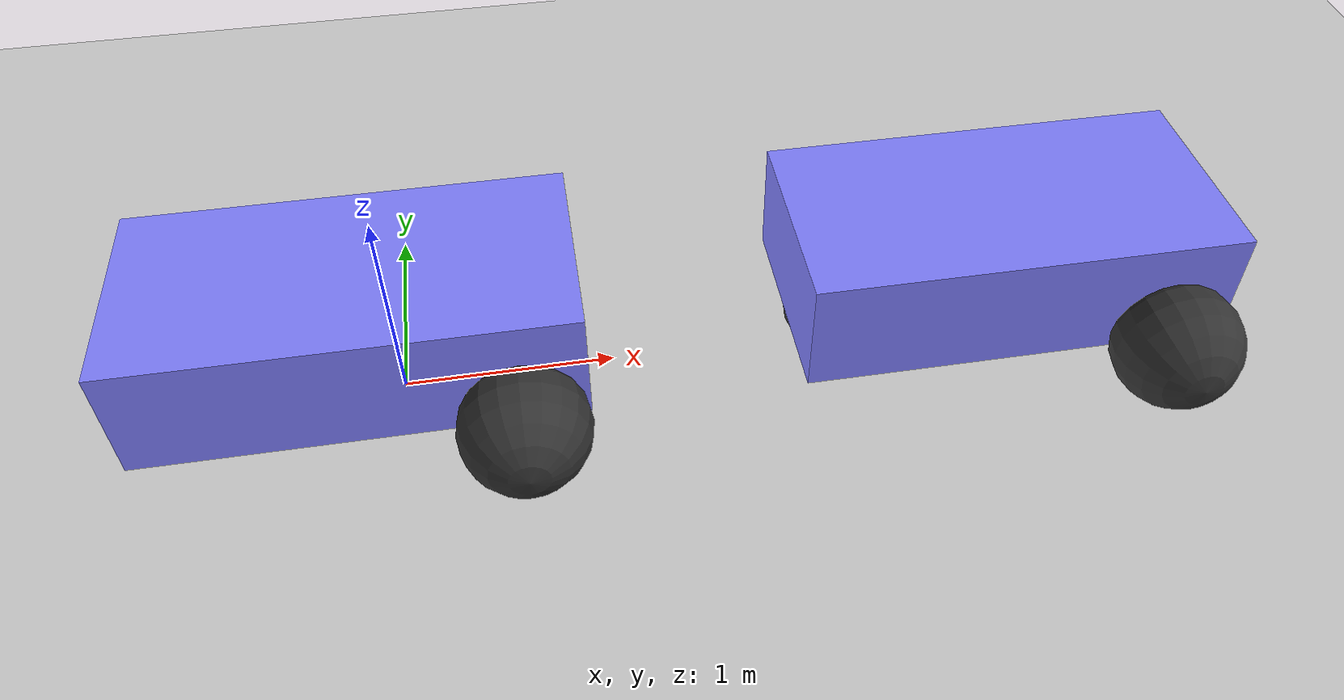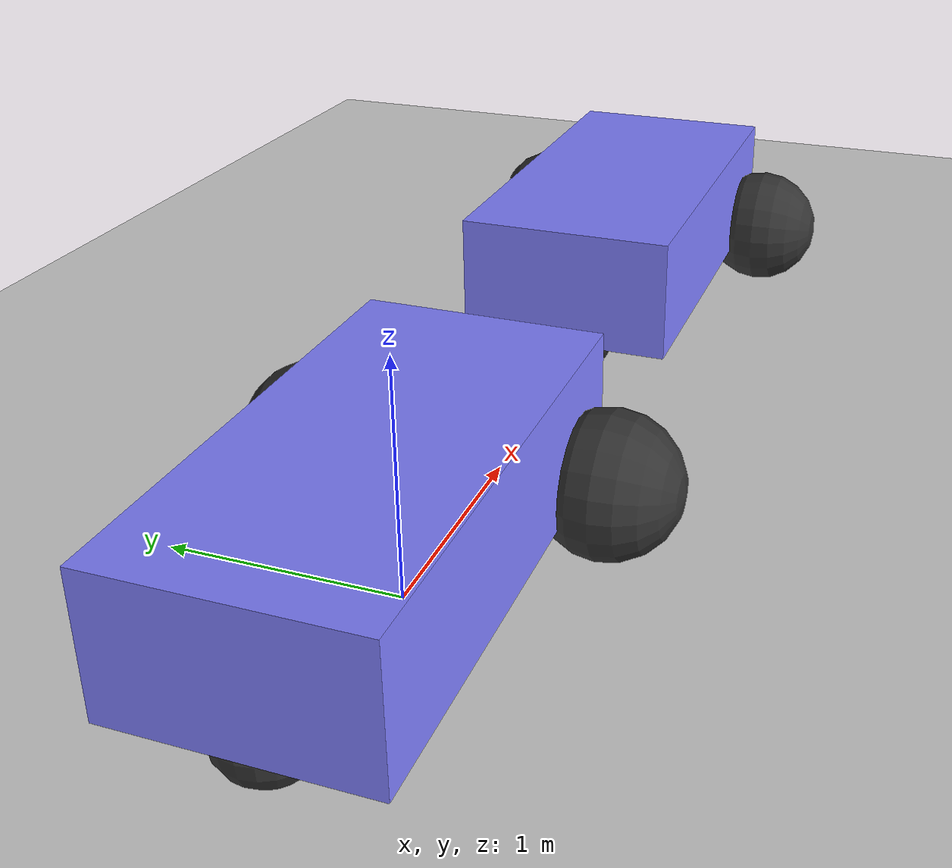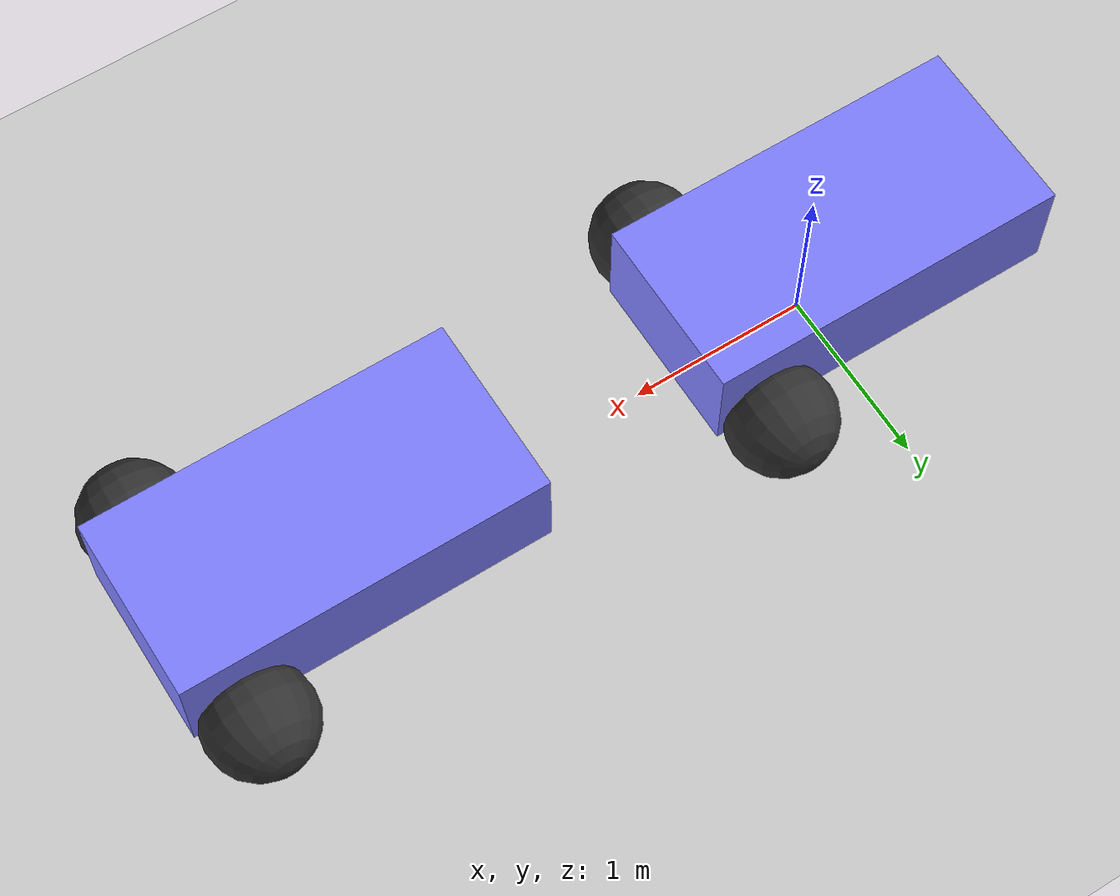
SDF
<?xml version="1.0" ?>
<sdf version="1.6">
  <world name="diff_drive">

    <physics name="1ms" type="ignored">
      <max_step_size>0.001</max_step_size>
      <real_time_factor>0</real_time_factor>
    </physics>
    <plugin
      filename="gz-sim-physics-system"
      name="gz::sim::systems::Physics">
    </plugin>

    <light type="directional" name="sun">
      <cast_shadows>true</cast_shadows>
      <pose>0 0 10 0 0 0</pose>
      <diffuse>1 1 1 1</diffuse>
      <specular>0.5 0.5 0.5 1</specular>
      <attenuation>
        <range>1000</range>
        <constant>0.9</constant>
        <linear>0.01</linear>
        <quadratic>0.001</quadratic>
      </attenuation>
      <direction>-0.5 0.1 -0.9</direction>
    </light>

    <model name="ground_plane">
      <static>true</static>
      <link name="link">
        <collision name="collision">
          <geometry>
            <plane>
              <normal>0 0 1</normal>
              <size>100 100</size>
            </plane>
          </geometry>
        </collision>
        <visual name="visual">
          <geometry>
            <plane>
              <normal>0 0 1</normal>
              <size>100 100</size>
            </plane>
          </geometry>
          <material>
            <ambient>0.8 0.8 0.8 1</ambient>
            <diffuse>0.8 0.8 0.8 1</diffuse>
            <specular>0.8 0.8 0.8 1</specular>
          </material>
        </visual>
      </link>
    </model>

    <model name='vehicle_1'>
      <pose>0 0 0.325 0 -0 0</pose>

      <link name='chassis'>
        <pose>-0.151427 -0 0.175 0 -0 0</pose>
        <inertial>
          <mass>1.14395</mass>
          <inertia>
            <ixx>0.126164</ixx>
            <ixy>0</ixy>
            <ixz>0</ixz>
            <iyy>0.416519</iyy>
            <iyz>0</iyz>
            <izz>0.481014</izz>
          </inertia>
        </inertial>
        <visual name='visual'>
          <geometry>
            <box>
              <size>2.01142 1 0.568726</size>
            </box>
          </geometry>
          <material>
            <ambient>0.5 0.5 1.0 1</ambient>
            <diffuse>0.5 0.5 1.0 1</diffuse>
            <specular>0.0 0.0 1.0 1</specular>
          </material>
        </visual>
        <collision name='collision'>
          <geometry>
            <box>
              <size>2.01142 1 0.568726</size>
            </box>
          </geometry>
        </collision>
      </link>

      <link name='left_wheel'>
        <pose>0.554283 0.625029 -0.025 -1.5707 0 0</pose>
        <inertial>
          <mass>2</mass>
          <inertia>
            <ixx>0.145833</ixx>
            <ixy>0</ixy>
            <ixz>0</ixz>
            <iyy>0.145833</iyy>
            <iyz>0</iyz>
            <izz>0.125</izz>
          </inertia>
        </inertial>
        <visual name='visual'>
          <geometry>
            <sphere>
              <radius>0.3</radius>
            </sphere>
          </geometry>
          <material>
            <ambient>0.2 0.2 0.2 1</ambient>
            <diffuse>0.2 0.2 0.2 1</diffuse>
            <specular>0.2 0.2 0.2 1</specular>
          </material>
        </visual>
        <collision name='collision'>
          <geometry>
            <sphere>
              <radius>0.3</radius>
            </sphere>
          </geometry>
        </collision>
      </link>

      <link name='right_wheel'>
        <pose>0.554282 -0.625029 -0.025 -1.5707 0 0</pose>
        <inertial>
          <mass>2</mass>
          <inertia>
            <ixx>0.145833</ixx>
            <ixy>0</ixy>
            <ixz>0</ixz>
            <iyy>0.145833</iyy>
            <iyz>0</iyz>
            <izz>0.125</izz>
          </inertia>
        </inertial>
        <visual name='visual'>
          <geometry>
            <sphere>
              <radius>0.3</radius>
            </sphere>
          </geometry>
          <material>
            <ambient>0.2 0.2 0.2 1</ambient>
            <diffuse>0.2 0.2 0.2 1</diffuse>
            <specular>0.2 0.2 0.2 1</specular>
          </material>
        </visual>
        <collision name='collision'>
          <geometry>
            <sphere>
              <radius>0.3</radius>
            </sphere>
          </geometry>
        </collision>
      </link>

      <link name='caster'>
        <pose>-0.957138 -0 -0.125 0 -0 0</pose>
        <inertial>
          <mass>1</mass>
          <inertia>
            <ixx>0.1</ixx>
            <ixy>0</ixy>
            <ixz>0</ixz>
            <iyy>0.1</iyy>
            <iyz>0</iyz>
            <izz>0.1</izz>
          </inertia>
        </inertial>
        <visual name='visual'>
          <geometry>
            <sphere>
              <radius>0.2</radius>
            </sphere>
          </geometry>
          <material>
            <ambient>0.2 0.2 0.2 1</ambient>
            <diffuse>0.2 0.2 0.2 1</diffuse>
            <specular>0.2 0.2 0.2 1</specular>
          </material>
        </visual>
        <collision name='collision'>
          <geometry>
            <sphere>
              <radius>0.2</radius>
            </sphere>
          </geometry>
        </collision>
      </link>

      <joint name='left_wheel_joint' type='revolute'>
        <parent>chassis</parent>
        <child>left_wheel</child>
        <axis>
          <xyz>0 0 1</xyz>
          <limit>
            <lower>-1.79769e+308</lower>
            <upper>1.79769e+308</upper>
          </limit>
        </axis>
      </joint>

      <joint name='right_wheel_joint' type='revolute'>
        <parent>chassis</parent>
        <child>right_wheel</child>
        <axis>
          <xyz>0 0 1</xyz>
          <limit>
            <lower>-1.79769e+308</lower>
            <upper>1.79769e+308</upper>
          </limit>
        </axis>
      </joint>

      <joint name='caster_wheel' type='ball'>
        <parent>chassis</parent>
        <child>caster</child>
      </joint>

      <plugin
        filename="gz-sim-diff-drive-system"
        name="gz::sim::systems::DiffDrive">
        <left_joint>left_wheel_joint</left_joint>
        <right_joint>right_wheel_joint</right_joint>
        <wheel_separation>1.25</wheel_separation>
        <wheel_radius>0.3</wheel_radius>
        <max_linear_acceleration>1</max_linear_acceleration>
        <min_linear_acceleration>-1</min_linear_acceleration>
        <max_angular_acceleration>2</max_angular_acceleration>
        <min_angular_acceleration>-2</min_angular_acceleration>
        <max_linear_velocity>0.5</max_linear_velocity>
        <min_linear_velocity>-0.5</min_linear_velocity>
        <max_angular_velocity>1</max_angular_velocity>
        <min_angular_velocity>-1</min_angular_velocity>
        <!-- no odom_publisher_frequency defaults to 50 Hz -->
      </plugin>

      <plugin
        filename="gz-sim-joint-state-publisher-system"
        name="gz::sim::systems::JointStatePublisher">
      </plugin>

    </model>

    <model name='vehicle_2'>
      <pose>3.0 0.0 0.325 0 -0 0</pose>

      <link name='chassis'>
        <pose>-0.151427 -0 0.175 0 -0 0</pose>
        <inertial>
          <mass>1.14395</mass>
          <inertia>
            <ixx>0.126164</ixx>
            <ixy>0</ixy>
            <ixz>0</ixz>
            <iyy>0.416519</iyy>
            <iyz>0</iyz>
            <izz>0.481014</izz>
          </inertia>
        </inertial>
        <visual name='visual'>
          <geometry>
            <box>
              <size>2.01142 1 0.568726</size>
            </box>
          </geometry>
          <material>
            <ambient>0.5 0.5 1.0 1</ambient>
            <diffuse>0.5 0.5 1.0 1</diffuse>
            <specular>0.0 0.0 1.0 1</specular>
          </material>
        </visual>
        <collision name='collision'>
          <geometry>
            <box>
              <size>2.01142 1 0.568726</size>
            </box>
          </geometry>
        </collision>
      </link>

      <link name='left_wheel'>
        <pose>0.554283 0.625029 -0.025 -1.5707 0 0</pose>
        <inertial>
          <mass>2</mass>
          <inertia>
            <ixx>0.145833</ixx>
            <ixy>0</ixy>
            <ixz>0</ixz>
            <iyy>0.145833</iyy>
            <iyz>0</iyz>
            <izz>0.125</izz>
          </inertia>
        </inertial>
        <visual name='visual'>
          <geometry>
            <sphere>
              <radius>0.3</radius>
            </sphere>
          </geometry>
          <material>
            <ambient>0.2 0.2 0.2 1</ambient>
            <diffuse>0.2 0.2 0.2 1</diffuse>
            <specular>0.2 0.2 0.2 1</specular>
          </material>
        </visual>
        <collision name='collision'>
          <geometry>
            <sphere>
              <radius>0.3</radius>
            </sphere>
          </geometry>
        </collision>
      </link>

      <link name='right_wheel'>
        <pose>0.554282 -0.625029 -0.025 -1.5707 0 0</pose>
        <inertial>
          <mass>2</mass>
          <inertia>
            <ixx>0.145833</ixx>
            <ixy>0</ixy>
            <ixz>0</ixz>
            <iyy>0.145833</iyy>
            <iyz>0</iyz>
            <izz>0.125</izz>
          </inertia>
        </inertial>
        <visual name='visual'>
          <geometry>
            <sphere>
              <radius>0.3</radius>
            </sphere>
          </geometry>
          <material>
            <ambient>0.2 0.2 0.2 1</ambient>
            <diffuse>0.2 0.2 0.2 1</diffuse>
            <specular>0.2 0.2 0.2 1</specular>
          </material>
        </visual>
        <collision name='collision'>
          <geometry>
            <sphere>
              <radius>0.3</radius>
            </sphere>
          </geometry>
        </collision>
      </link>

      <link name='caster'>
        <pose>-0.957138 -0 -0.125 0 -0 0</pose>
        <inertial>
          <mass>1</mass>
          <inertia>
            <ixx>0.1</ixx>
            <ixy>0</ixy>
            <ixz>0</ixz>
            <iyy>0.1</iyy>
            <iyz>0</iyz>
            <izz>0.1</izz>
          </inertia>
        </inertial>
        <visual name='visual'>
          <geometry>
            <sphere>
              <radius>0.2</radius>
            </sphere>
          </geometry>
          <material>
            <ambient>0.2 0.2 0.2 1</ambient>
            <diffuse>0.2 0.2 0.2 1</diffuse>
            <specular>0.2 0.2 0.2 1</specular>
          </material>
        </visual>
        <collision name='collision'>
          <geometry>
            <sphere>
              <radius>0.2</radius>
            </sphere>
          </geometry>
        </collision>
      </link>

      <joint name='left_wheel_joint' type='revolute'>
        <parent>chassis</parent>
        <child>left_wheel</child>
        <axis>
          <xyz>0 0 1</xyz>
          <limit>
            <lower>-1.79769e+308</lower>
            <upper>1.79769e+308</upper>
          </limit>
        </axis>
      </joint>

      <joint name='right_wheel_joint' type='revolute'>
        <parent>chassis</parent>
        <child>right_wheel</child>
        <axis>
          <xyz>0 0 1</xyz>
          <limit>
            <lower>-1.79769e+308</lower>
            <upper>1.79769e+308</upper>
          </limit>
        </axis>
      </joint>

      <joint name='caster_wheel' type='ball'>
        <parent>chassis</parent>
        <child>caster</child>
      </joint>

      <plugin
        filename="gz-sim-diff-drive-system"
        name="gz::sim::systems::DiffDrive">
        <left_joint>left_wheel_joint</left_joint>
        <right_joint>right_wheel_joint</right_joint>
        <wheel_separation>1.25</wheel_separation>
        <wheel_radius>0.3</wheel_radius>
        <max_linear_acceleration>1</max_linear_acceleration>
        <min_linear_acceleration>-1</min_linear_acceleration>
        <max_angular_acceleration>2</max_angular_acceleration>
        <min_angular_acceleration>-2</min_angular_acceleration>
        <max_linear_velocity>0.5</max_linear_velocity>
        <min_linear_velocity>-0.5</min_linear_velocity>
        <max_angular_velocity>1</max_angular_velocity>
        <min_angular_velocity>-1</min_angular_velocity>
        <!-- no odom_publisher_frequency defaults to 50 Hz -->
      </plugin>

      <plugin
        filename="gz-sim-joint-state-publisher-system"
        name="gz::sim::systems::JointStatePublisher">
      </plugin>

    </model>

  </world>
</sdf>
